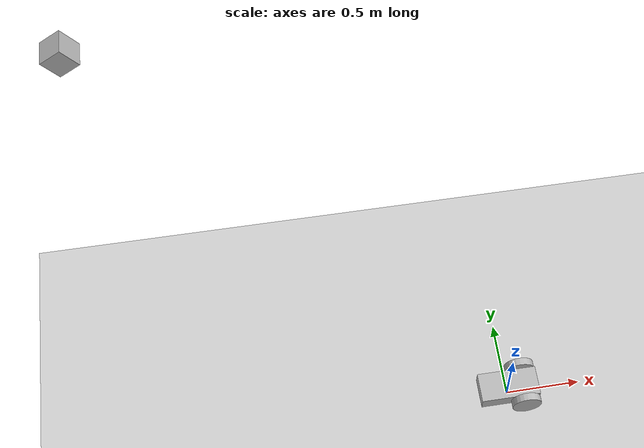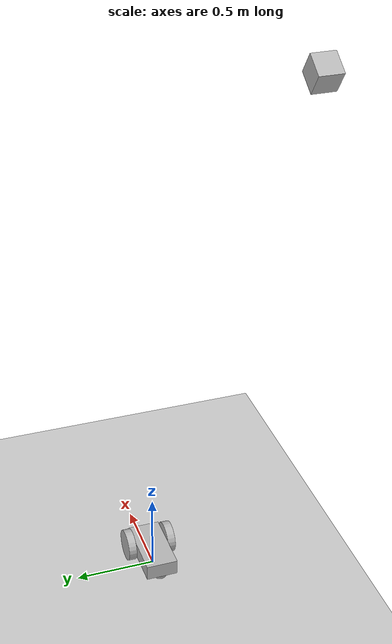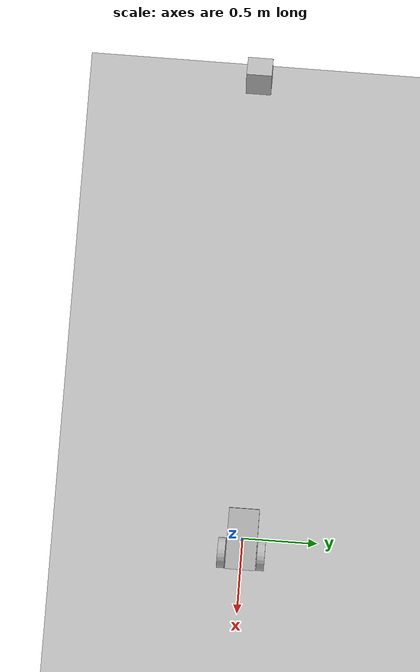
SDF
<?xml version="1.0"?>
<sdf version='1.6'>
  <world name='default'>

  <material name="blue">
    <color rgba="0 0 0.8 1"/>
  </material>

  <material name="white">
    <color rgba="1 1 1 1"/>
  </material>

    <light name='user_directional_light_0' type='directional'>
      <pose>0 0 1 0 0 0</pose>
    </light>

    <include>
          <uri>model://ground_plane</uri>
    </include>

  <model name="diffdrive">

  <static>false</static>

   <link name='chassis'>
     <pose>0 0 0.1 0 0 0</pose>

   <inertial>
     <mass>10.0</mass>
     <pose>0.0 0 0.1 0 0 0</pose>
     <inertia>
     <ixx>0.5</ixx>
     <iyy>1.0</iyy>
     <izz>0.1</izz>
     </inertia>
    </inertial>

    <collision name='collision'>
       <geometry>
       <box>
       <size>.4 .2 .1</size>
       </box>
       </geometry>
     </collision>

    <visual name='visual'>
      <pose>0 0 0.0 0 0 0</pose>
      <geometry>
      <box>
      <size>.4 .2 .1</size>
      </box>
      </geometry>
    </visual>

<collision name='caster_collision'>
 <pose>-0.15 0 -0.05 0 0 0</pose>
 <geometry>
 <sphere>
 <radius>.05</radius>
 </sphere>
 </geometry>

 <surface>
 <friction>
 <ode>
 <mu>0</mu>
 <mu2>0</mu2>
 <slip1>1.0</slip1>
 <slip2>1.0</slip2>
 </ode>
 </friction>
 </surface>
 </collision>

<visual name='caster_visual'>
 <pose>-0.15 0 -0.05 0 0 0</pose>
 <geometry>
 <sphere>
 <radius>.05</radius>
 </sphere>
 </geometry>
 </visual>

</link>

<link name="left_wheel">
 <pose>0.1 0.13 0.1 0 1.5707 1.5707</pose>
 <collision name="collision">
 <geometry>
 <cylinder>
 <radius>.1</radius>
 <length>.05</length>
 </cylinder>
 </geometry>
 </collision>
 <visual name="visual">
 <geometry>
 <cylinder>
 <radius>.1</radius>
 <length>.05</length>
 </cylinder>
 </geometry>
 <material name="white"/>
</visual>
 </link>

<joint type="revolute" name="left_wheel_hinge">
 <pose>0 0 -0.03 0 0 0</pose>
 <child>left_wheel</child>
 <parent>chassis</parent>
 <axis>
 <xyz>0 1 0</xyz>
 </axis>
 </joint>

<link name="right_wheel">
 <pose>0.1 -0.13 0.1 0 1.5707 1.5707</pose>
 <collision name="collision">
 <geometry>
 <cylinder>
 <radius>.1</radius>
 <length>.05</length>
 </cylinder>
 </geometry>
 </collision>
 <visual name="visual">
 <geometry>
 <cylinder>
 <radius>.1</radius>
 <length>.05</length>
 </cylinder>
 </geometry>
 <material name="white"/>
 </visual>
 </link>

<joint type="revolute" name="right_wheel_hinge">
 <pose>0 0 0.03 0 0 0</pose>
 <child>right_wheel</child>
 <parent>chassis</parent>
 <axis>
 <xyz>0 1 0</xyz>
 </axis>
 </joint>

<plugin name="differential_drive_controller" filename="libgazebo_ros_diff_drive.so">
 <alwaysOn>true</alwaysOn>
 <updateRate>20</updateRate>
 <leftJoint>left_wheel_hinge</leftJoint>
 <rightJoint>right_wheel_hinge</rightJoint>
 <wheelSeparation>0.4</wheelSeparation>
 <wheelDiameter>0.1</wheelDiameter>
 <torque>20</torque>
 <commandTopic>cmd_vel</commandTopic>
 <odometryTopic>odom</odometryTopic>
 <odometryFrame>odom</odometryFrame>
 <robotBaseFrame>base_footprint</robotBaseFrame>
 </plugin>

  </model>

    <model name='camera'>
      <static>true</static>
      <pose>-2 0 4 0 1 0</pose>

	<!-- Joint for the Camera and the "optical frame"-->

      <link name='camera_link'>
        <visual name='visual'>
          <geometry>
            <box>
              <size>0.1 0.1 0.1</size>
            </box>
          </geometry>
          <material name="white" />
        </visual>
        <sensor name='my_camera' type='camera'>
	  <update_rate>30</update_rate>
          <camera>
            <save enabled="true">
              <path>/tmp/camera_save_tutorial</path>
            </save>
            <horizontal_fov>1.047</horizontal_fov>
            <image>
              <width>1920</width>
              <height>1080</height>
            </image>
            <clip>
              <near>0.1</near>
              <far>100</far>
            </clip>
          </camera>
	  <always_on>1</always_on>

 	   <!-- Include plugin for Publishing ROS Topics-->
           <plugin name="camera_controller" filename="libgazebo_ros_camera.so">
                <frame_name>camera_link_optical</frame_name>
                <min_depth>0.1</min_depth>
                <max_depth>500</max_depth>
            </plugin>

        </sensor>
    </link>

    </model>
  </world>
</sdf>
